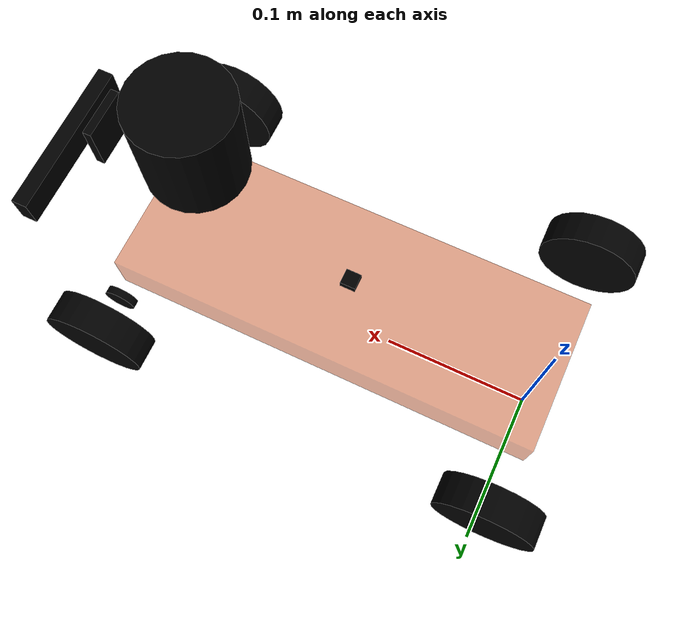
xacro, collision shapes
<?xml version="1.0"?>
<robot xmlns:xacro="http://www.ros.org/wiki/xacro" name="ackermann_robot">
  <xacro:arg name="prefix" default="" />

  <xacro:include filename="$(find ackermann_robot_description)/urdf/ackermann_robot_description.urdf.xacro" />

  <xacro:include filename="$(find ackermann_robot_description)/urdf/ackermann_robot.materials.xacro" />

  <xacro:include filename="$(find ackermann_robot_control)/urdf/ackermann_robot.gazebo.xacro" />

  <xacro:include filename="$(find ackermann_robot_control)/ros2_control/ackermann_robot.ros2_control.xacro" />

  <xacro:include filename="$(find ackermann_robot_control)/urdf/ackermann_robot.transmission.xacro" />

  <xacro:ackermann_robot prefix="$(arg prefix)" />
  <xacro:ackermann_robot_gazebo prefix="$(arg prefix)" />
  <xacro:ackermann_robot_ros2_control prefix="$(arg prefix)" />
  <xacro:steering_hinge_transmission name="$(arg prefix)left_steering_hinge" />
  <xacro:steering_hinge_transmission name="$(arg prefix)right_steering_hinge" />
  <xacro:wheel_transmission name="$(arg prefix)left_front_wheel" />
  <xacro:wheel_transmission name="$(arg prefix)right_front_wheel" />
  <xacro:wheel_transmission name="$(arg prefix)left_rear_wheel" />
  <xacro:wheel_transmission name="$(arg prefix)right_rear_wheel" />

</robot>

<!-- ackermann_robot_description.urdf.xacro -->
<robot xmlns:xacro="http://www.ros.org/wiki/xacro">
    <xacro:macro name="ackermann_robot" params="prefix">
        <link name="${prefix}base_footprint" />
        <link name="${prefix}base_link" />

        <link name="${prefix}chasis_link">
            <visual>
                <geometry>
                    <mesh filename="file://$(find ackermann_robot_description)/meshes/base_link.STL" />
                </geometry>
                <origin xyz="-0.13 0 0" rpy="0 0 0" />
                <material name="yellow" />
            </visual>
            <collision>
                <geometry>
                    <box size="0.28 0.1 0.03" />
                </geometry>
                <origin xyz="0.0 0.0 0.0" rpy="0.0 0.0 0.0" />
            </collision>
        </link>

        <joint name="${prefix}base_link2base_footprint" type="fixed">
            <parent link="${prefix}base_footprint" />
            <child link="${prefix}base_link" />
            <origin xyz="0 0 0.032" rpy="0 0 0" />
        </joint>

        <joint name="${prefix}chasis_link2base_link" type="fixed">
            <parent link="${prefix}base_link" />
            <child link="${prefix}chasis_link" />
            <origin xyz="0.13 0 0.032" rpy="0 0 0" />
        </joint>

        <link name="${prefix}base_inertia">
            <inertial>
                <origin xyz="0 0 0" />
                <mass value="4" />
                <inertia ixx="0.0264" ixy="0" ixz="0" iyy="0.0294" iyz="0" izz="0.00364" />
            </inertial>
        </link>

        <joint name="${prefix}chassis_inertia_joint" type="fixed">
            <origin xyz="0 0 0" rpy="0 0 0" />
            <parent link="${prefix}chasis_link" />
            <child link="${prefix}base_inertia" />
        </joint>

        <link name="${prefix}left_steering_hinge">
            <visual>
                <geometry>
                    <cylinder radius="0.01" length="0.005" />
                </geometry>
                <origin xyz="0 0 0" rpy="1.57 0 0" />
                <material name="black" />
            </visual>
            <collision>
                <geometry>
                    <cylinder radius="0.01" length="0.005" />
                </geometry>
                <origin xyz="0.0 0.0 0.0" rpy="1.57 0.0 0.0" />
            </collision>
            <inertial>
                <origin xyz="0 0 0" />
                <mass value="0.5" />
                <inertia ixx="1.35E-05" ixy="0" ixz="0" iyy="1.35E-05" iyz="0" izz="2.5E-05" />
            </inertial>
        </link>

        <joint name="${prefix}left_steering_hinge_joint" type="revolute">
            <parent link="${prefix}chasis_link" />
            <child link="${prefix}left_steering_hinge" />
            <origin xyz="0.13 0.065 0" />
            <axis xyz="0 0 1" />
            <limit lower="-0.6" upper="0.6" effort="5.0" velocity="1000.0" />
        </joint>

        <link name="${prefix}left_front_wheel">
            <visual>
                <geometry>
                    <cylinder radius="0.033" length="0.02" />
                </geometry>
                <origin xyz="0 0 0" rpy="1.57 0 0" />
                <material name="black" />
            </visual>
            <collision>
                <geometry>
                    <cylinder radius="0.032" length="0.02" />
                </geometry>
                <origin xyz="0.0 0.0 0.0" rpy="1.57 0.0 0.0" />
            </collision>
            <inertial>
                <origin xyz="0 0 0" />
                <mass value="2.0" />
                <inertia ixx="6.64E-04" ixy="0" ixz="0" iyy="6.64E-04" iyz="0" izz="1.02E-03" />
            </inertial>
        </link>

        <joint name="${prefix}left_front_wheel_joint" type="continuous">
            <parent link="${prefix}left_steering_hinge" />
            <child link="${prefix}left_front_wheel" />
            <origin xyz="0 0.025 0" />
            <axis xyz="0 1 0" />
            <limit effort="10" velocity="1000" />
        </joint>

        <link name="${prefix}right_steering_hinge">
            <visual>
                <geometry>
                    <cylinder radius="0.01" length="0.005" />
                </geometry>
                <origin xyz="0 0 0" rpy="1.57 0 0" />
                <material name="black" />
            </visual>
            <collision>
                <geometry>
                    <cylinder radius="0.01" length="0.005" />
                </geometry>
                <origin xyz="0.0 0.0 0.0" rpy="1.57 0.0 0.0" />
            </collision>
            <inertial>
                <origin xyz="0 0 0" />
                <mass value="0.5" />
                <inertia ixx="1.35E-05" ixy="0" ixz="0" iyy="1.35E-05" iyz="0" izz="2.5E-05" />
            </inertial>
        </link>

        <joint name="${prefix}right_steering_hinge_joint" type="revolute">
            <parent link="${prefix}chasis_link" />
            <child link="${prefix}right_steering_hinge" />
            <origin xyz="0.13 -0.065 0" />
            <axis xyz="0 0 1" />
            <limit lower="-0.6" upper="0.6" effort="5.0" velocity="1000.0" />
        </joint>

        <link name="${prefix}right_front_wheel">
            <visual>
                <geometry>
                    <cylinder radius="0.033" length="0.02" />
                </geometry>
                <origin xyz="0 0 0" rpy="1.57 0 0" />
                <material name="black" />
            </visual>
            <collision>
                <geometry>
                    <cylinder radius="0.032" length="0.02" />
                </geometry>
                <origin xyz="0.0 0.0 0.0" rpy="1.57 0.0 0.0" />
            </collision>
            <inertial>
                <origin xyz="0 0 0" />
                <mass value="2.0" />
                <inertia ixx="6.64E-04" ixy="0" ixz="0" iyy="6.64E-04" iyz="0" izz="1.02E-03" />
            </inertial>
        </link>

        <joint name="${prefix}right_front_wheel_joint" type="continuous">
            <parent link="${prefix}right_steering_hinge" />
            <child link="${prefix}right_front_wheel" />
            <origin xyz="0 -0.025 0" />
            <axis xyz="0 1 0" />
            <limit effort="10" velocity="1000" />
        </joint>

        <link name="${prefix}left_rear_wheel">
            <visual>
                <geometry>
                    <cylinder radius="0.032" length="0.02" />
                </geometry>
                <origin xyz="0 0 0" rpy="1.57 0 0" />
                <material name="black" />
            </visual>
            <collision>
                <geometry>
                    <cylinder radius="0.032" length="0.02" />
                </geometry>
                <origin xyz="0.0 0.0 0.0" rpy="1.57 0.0 0.0" />
            </collision>
            <inertial>
                <origin xyz="0 0 0" />
                <mass value="2.0" />
                <inertia ixx="6.64E-04" ixy="0" ixz="0" iyy="6.64E-04" iyz="0" izz="1.02E-03" />
            </inertial>
        </link>

        <joint name="${prefix}left_rear_wheel_joint" type="continuous">
            <parent link="${prefix}chasis_link" />
            <child link="${prefix}left_rear_wheel" />
            <origin xyz="-0.13 0.09 0" />
            <axis xyz="0 1 0" />
            <limit effort="10" velocity="1000" />
        </joint>

        <link name="${prefix}right_rear_wheel">
            <visual>
                <geometry>
                    <cylinder radius="0.032" length="0.02" />
                </geometry>
                <origin xyz="0 0 0" rpy="1.57 0 0" />
                <material name="black" />
            </visual>
            <collision>
                <geometry>
                    <cylinder radius="0.032" length="0.02" />
                </geometry>
                <origin xyz="0.0 0.0 0.0" rpy="1.57 0.0 0.0" />
            </collision>
            <inertial>
                <origin xyz="0 0 0" />
                <mass value="2.0" />
                <inertia ixx="6.64E-04" ixy="0" ixz="0" iyy="6.64E-04" iyz="0" izz="1.02E-03" />
            </inertial>
        </link>

        <joint name="${prefix}right_rear_wheel_joint" type="continuous">
            <parent link="${prefix}chasis_link" />
            <child link="${prefix}right_rear_wheel" />
            <origin xyz="-0.13 -0.09 0" />
            <axis xyz="0 1 0" />
            <limit effort="10" velocity="1000" />
        </joint>

        <link name="${prefix}camera">
            <visual>
                <geometry>
                    <mesh filename="file://$(find ackermann_robot_description)/meshes/camera.STL" />
                </geometry>
                <origin xyz="0 0 -0.025" rpy="0 0 0" />
                <material name="black" />
            </visual>
            <collision>
                <geometry>
                    <box size="0.005 0.03 0.03" />
                </geometry>
                <origin xyz="0.0 0.0 0.0" rpy="0.0 0.0 0.0" />
            </collision>
            <inertial>
                <origin xyz="0 0 0" />
                <mass value="0.05" />
                <inertia ixx="6.64E-04" ixy="0" ixz="0" iyy="6.64E-04" iyz="0" izz="1.02E-03" />
            </inertial>
        </link>

        <joint name="${prefix}camera_joint" type="fixed">
            <parent link="${prefix}chasis_link" />
            <child link="${prefix}camera" />
            <origin xyz="0.14851 0.0022137 0.0975" />
            <axis xyz="0 0 1" />
        </joint>

        <link name="${prefix}real_sense">
            <visual>
                <geometry>
                    <mesh filename="file://$(find ackermann_robot_description)/meshes/real_sense.STL" />
                </geometry>
                <origin xyz="0 0 -0.025" rpy="0 0 0" />
                <material name="black" />
            </visual>
            <collision>
                <geometry>
                    <box size="0.01 0.1 0.02" />
                </geometry>
                <origin xyz="0.0 0.0 0.0" rpy="0.0 0.0 0.0" />
            </collision>
            <inertial>
                <origin xyz="0 0 0" />
                <mass value="0.05" />
                <inertia ixx="6.64E-04" ixy="0" ixz="0" iyy="6.64E-04" iyz="0" izz="1.02E-03" />
            </inertial>
        </link>

        <joint name="${prefix}realsense_joint" type="fixed">
            <parent link="${prefix}chasis_link" />
            <child link="${prefix}real_sense" />
            <origin xyz="0.18864 0.0038046 0.052021" />
            <axis xyz="0 0 1" />
        </joint>

        <link name="${prefix}realsense_depth" />
        <joint name="${prefix}realsense_depth_joint" type="fixed">
            <origin xyz="0 0 0" rpy="-1.5708 0 -1.5708" />
            <parent link="${prefix}real_sense" />
            <child link="${prefix}realsense_depth" />
        </joint>

        <link name="${prefix}lidar">
            <visual>
                <geometry>
                    <mesh filename="file://$(find ackermann_robot_description)/meshes/laser.STL" />
                </geometry>
                <origin xyz="0 0 -0.025" rpy="0 0 0" />
                <material name="black" />
            </visual>
            <collision>
                <geometry>
                    <cylinder radius="0.03" length="0.06" />
                </geometry>
                <origin xyz="0.0 0.0 0.0" rpy="0.0 0.0 0.0" />
            </collision>
            <inertial>
                <origin xyz="0 0 0" />
                <mass value="0.1" />
                <inertia ixx="6.64E-04" ixy="0" ixz="0" iyy="6.64E-04" iyz="0" izz="1.02E-03" />
            </inertial>
        </link>

        <joint name="${prefix}lidar_joint" type="fixed">
            <parent link="${prefix}chasis_link" />
            <child link="${prefix}lidar" />
            <origin xyz="0.093603 0 0.12377" />
            <axis xyz="0 0 1" />
        </joint>

        <link name="${prefix}imu">
            <visual>
                <geometry>
                    <box size="0.01 0.01 0.005" />
                </geometry>
                <origin xyz="0 0 0" rpy="0 0 0" />
                <material name="black" />
            </visual>
            <collision>
                <geometry>
                    <box size="0.01 0.01 0.005" />
                </geometry>
                <origin xyz="0.0 0.0 0.0" rpy="0.0 0.0 0.0" />
            </collision>
            <inertial>
                <origin xyz="0 0 0" />
                <mass value="0.05" />
                <inertia ixx="6.64E-04" ixy="0" ixz="0" iyy="6.64E-04" iyz="0" izz="1.02E-03" />
            </inertial>
        </link>

        <joint name="${prefix}imu_joint" type="fixed">
            <parent link="${prefix}chasis_link" />
            <child link="${prefix}imu" />
            <origin xyz="0 0 0.02" />
            <axis xyz="0 0 1" />
        </joint>
    </xacro:macro>
</robot>

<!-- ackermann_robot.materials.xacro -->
<robot xmlns:xacro="http://www.ros.org/wiki/xacro">
    <material name="yellow">
        <color rgba="0.8 0.3 0.1 0.5" />
    </material>

    <material name="black">
        <color rgba="0.0 0.0 0.0 1.0" />
    </material>
</robot>
